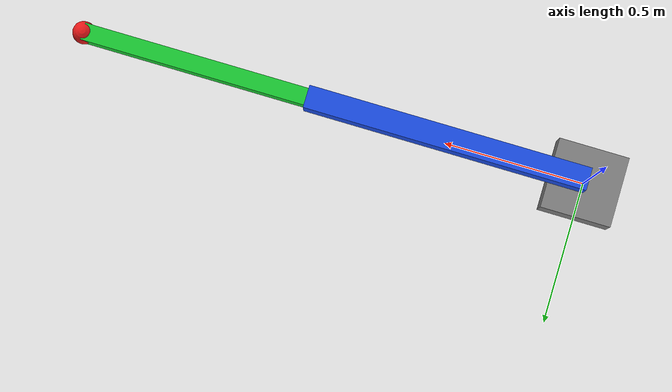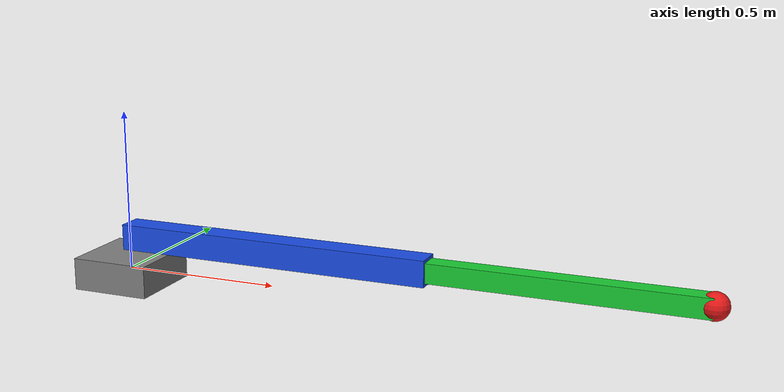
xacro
<?xml version="1.0"?>
<robot xmlns:xacro="http://www.ros.org/wiki/xacro" name="simple_2dof_arm">
    <!-- 初始位置 硬件类型(fake\gazebo)  -->
    <xacro:arg name="initial_positions_file" default="initial_positions.yaml" />
    <xacro:arg name="hardware_type" default="fake" />
    <xacro:arg name="ros2_controllers_file" default="" />
    <xacro:arg name="use_world_joint" default="false" />

    <!-- Import and instantiate the robot model. -->
    <xacro:include filename="$(find simple_arm_description)/urdf/simple_2dof_arm_model.xacro" />
    <xacro:simple_2dof_arm_model use_world_joint="$(arg use_world_joint)"/>

    <!-- Import control_xacro -->
    <xacro:include filename="simple_2dof_arm.ros2_control.xacro" />

    <xacro:simple_2dof_arm_ros2_control
        name="SimpleArmSystem"
        initial_positions_file="$(arg initial_positions_file)"
        hardware_type="$(arg hardware_type)"
        ros2_controllers_file="$(arg ros2_controllers_file)"/>

</robot>

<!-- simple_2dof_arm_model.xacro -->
<robot xmlns:xacro="http://www.ros.org/wiki/xacro">
  <xacro:property name="base_size_x" value="0.25"/>
  <xacro:property name="base_size_y" value="0.25"/>
  <xacro:property name="base_size_z" value="0.10"/>
  <xacro:property name="link1_length" value="1.0"/>
  <xacro:property name="link2_length" value="0.8"/>
  <xacro:property name="link1_width" value="0.08"/>
  <xacro:property name="link2_width" value="0.06"/>
  <xacro:property name="gazebo_visual_clearance" value="0.02"/>

  <xacro:macro name="box_inertial" params="mass x y z origin_x origin_y origin_z">
    <inertial>
      <origin xyz="${origin_x} ${origin_y} ${origin_z}" rpy="0 0 0"/>
      <mass value="${mass}"/>
      <inertia
        ixx="${mass / 12.0 * (y * y + z * z)}"
        ixy="0"
        ixz="0"
        iyy="${mass / 12.0 * (x * x + z * z)}"
        iyz="0"
        izz="${mass / 12.0 * (x * x + y * y)}"/>
    </inertial>
  </xacro:macro>

  <xacro:macro name="sphere_inertial" params="mass radius">
    <inertial>
      <origin xyz="0 0 0" rpy="0 0 0"/>
      <mass value="${mass}"/>
      <inertia
        ixx="${2.0 / 5.0 * mass * radius * radius}"
        ixy="0"
        ixz="0"
        iyy="${2.0 / 5.0 * mass * radius * radius}"
        iyz="0"
        izz="${2.0 / 5.0 * mass * radius * radius}"/>
    </inertial>
  </xacro:macro>

  <xacro:macro name="simple_2dof_arm_model" params="use_world_joint:=false">
    <material name="gray">
      <color rgba="0.5 0.5 0.5 1.0"/>
    </material>
    <material name="blue">
      <color rgba="0.1 0.3 0.9 1.0"/>
    </material>
    <material name="green">
      <color rgba="0.1 0.8 0.2 1.0"/>
    </material>
    <material name="red">
      <color rgba="0.9 0.1 0.1 1.0"/>
    </material>

    <xacro:if value="${use_world_joint}">
      <link name="world"/>

      <joint name="world_to_base_link" type="fixed">
        <parent link="world"/>
        <child link="base_link"/>
        <origin xyz="0 0 ${base_size_z / 2.0 + gazebo_visual_clearance}" rpy="0 0 0"/>
      </joint>
    </xacro:if>

    <link name="base_link">
      <xacro:box_inertial mass="1.0" x="${base_size_x}" y="${base_size_y}" z="${base_size_z}" origin_x="0" origin_y="0" origin_z="0"/>
      <visual>
        <origin xyz="0 0 0" rpy="0 0 0"/>
        <geometry>
          <box size="${base_size_x} ${base_size_y} ${base_size_z}"/>
        </geometry>
        <material name="gray"/>
      </visual>
      <xacro:if value="${not use_world_joint}">
        <collision>
          <origin xyz="0 0 0" rpy="0 0 0"/>
          <geometry>
            <box size="${base_size_x} ${base_size_y} ${base_size_z}"/>
          </geometry>
        </collision>
      </xacro:if>
    </link>

    <joint name="joint1" type="revolute">
      <parent link="base_link"/>
      <child link="link1"/>
      <origin xyz="0 0 ${base_size_z / 2.0 + link1_width / 2.0 + gazebo_visual_clearance}" rpy="0 0 0"/>
      <axis xyz="0 0 1"/>
      <limit lower="-3.14" upper="3.14" effort="10.0" velocity="1.0"/>
    </joint>

    <link name="link1">
      <xacro:box_inertial mass="0.5" x="${link1_length}" y="${link1_width}" z="${link1_width}" origin_x="${link1_length / 2.0}" origin_y="0" origin_z="0"/>
      <visual>
        <origin xyz="${link1_length / 2.0} 0 0" rpy="0 0 0"/>
        <geometry>
          <box size="${link1_length} ${link1_width} ${link1_width}"/>
        </geometry>
        <material name="blue"/>
      </visual>
      <collision>
        <origin xyz="${link1_length / 2.0} 0 0" rpy="0 0 0"/>
        <geometry>
          <box size="${link1_length} ${link1_width} ${link1_width}"/>
        </geometry>
      </collision>
    </link>

    <joint name="joint2" type="revolute">
      <parent link="link1"/>
      <child link="link2"/>
      <origin xyz="${link1_length} 0 0" rpy="0 0 0"/>
      <axis xyz="0 0 1"/>
      <limit lower="-1.57" upper="1.57" effort="10.0" velocity="1.0"/>
    </joint>

    <link name="link2">
      <xacro:box_inertial mass="0.4" x="${link2_length}" y="${link2_width}" z="${link2_width}" origin_x="${link2_length / 2.0}" origin_y="0" origin_z="0"/>
      <visual>
        <origin xyz="${link2_length / 2.0} 0 0" rpy="0 0 0"/>
        <geometry>
          <box size="${link2_length} ${link2_width} ${link2_width}"/>
        </geometry>
        <material name="green"/>
      </visual>
      <collision>
        <origin xyz="${link2_length / 2.0} 0 0" rpy="0 0 0"/>
        <geometry>
          <box size="${link2_length} ${link2_width} ${link2_width}"/>
        </geometry>
      </collision>
    </link>

    <joint name="tool0_fixed_joint" type="fixed">
      <parent link="link2"/>
      <child link="tool0"/>
      <origin xyz="${link2_length} 0 0" rpy="0 0 0"/>
    </joint>

    <link name="tool0">
      <xacro:sphere_inertial mass="0.05" radius="0.04"/>
      <visual>
        <origin xyz="0 0 0" rpy="0 0 0"/>
        <geometry>
          <sphere radius="0.04"/>
        </geometry>
        <material name="red"/>
      </visual>
      <collision>
        <origin xyz="0 0 0" rpy="0 0 0"/>
        <geometry>
          <sphere radius="0.04"/>
        </geometry>
      </collision>
    </link>
  </xacro:macro>
</robot>
